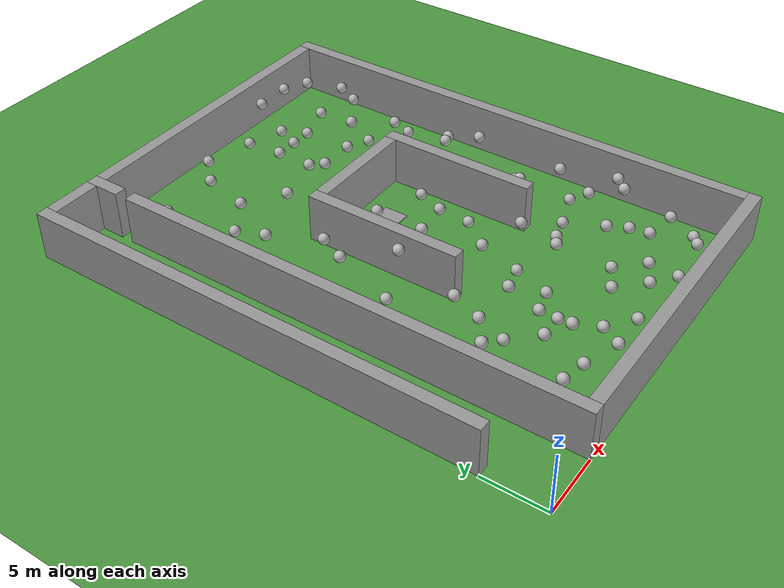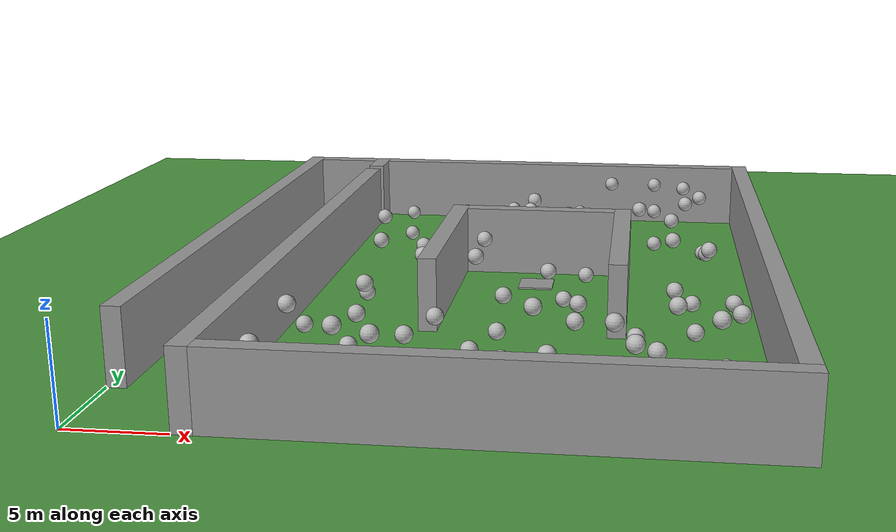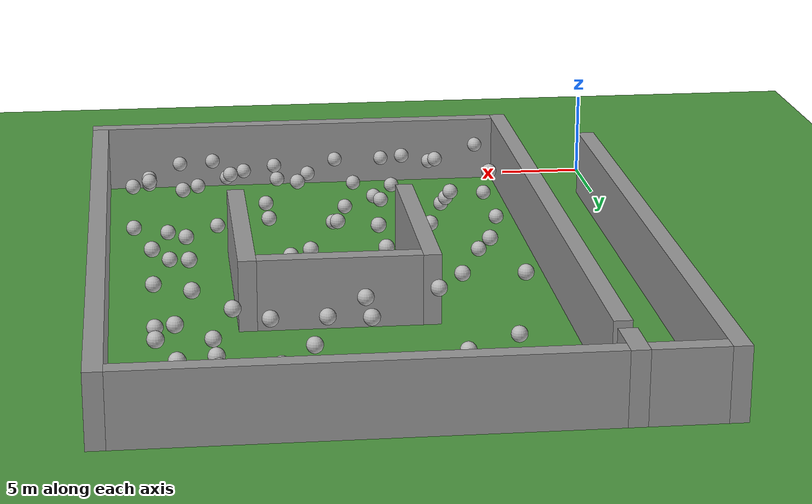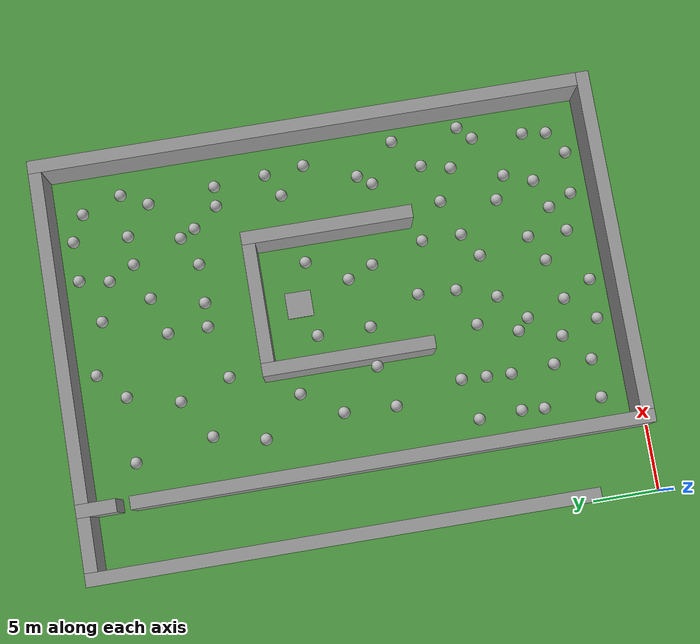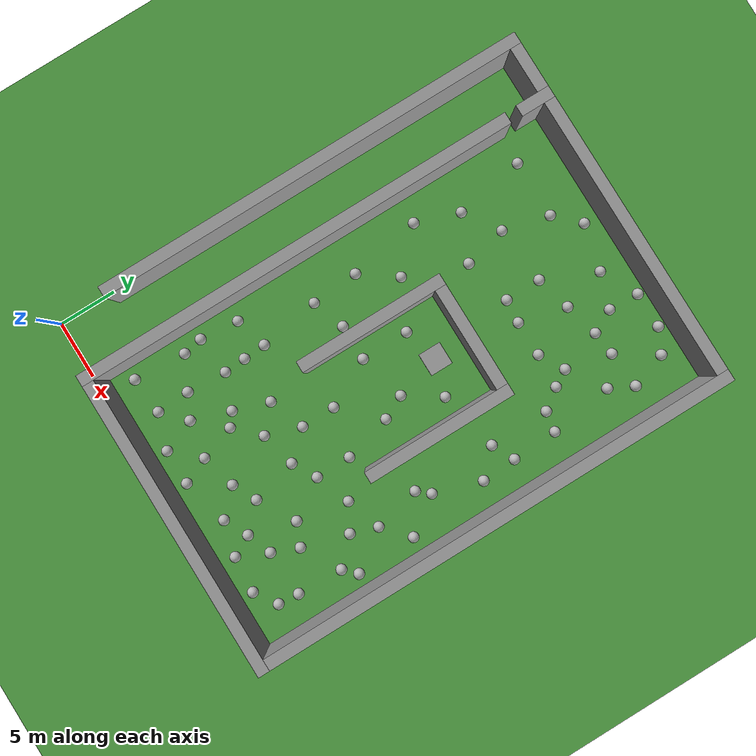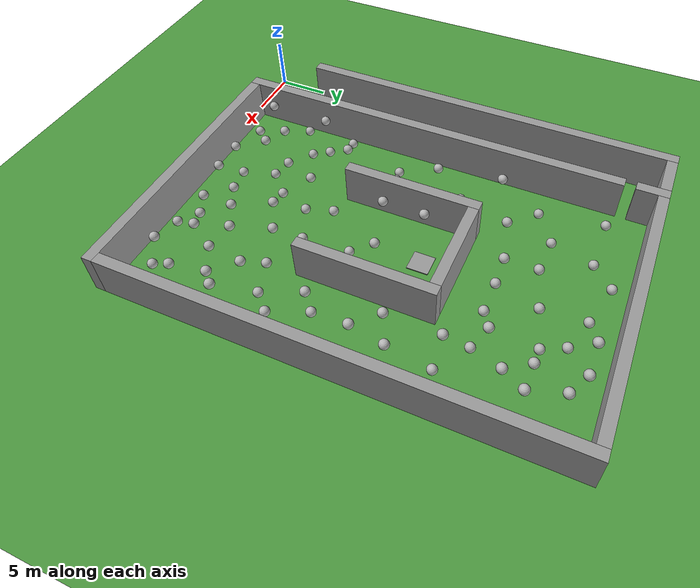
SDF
<sdf version="1.6">
 <world name="default">
  <light name="sun" type="directional">
   <pose>0 0 10 0 -0 0</pose>
   <diffuse>0.8 0.8 0.8 1</diffuse>
   <specular>0.1 0.1 0.1 1</specular>
   <attenuation>
    <range>1000</range>
    <constant>0.9</constant>
    <linear>0.01</linear>
    <quadratic>0.001</quadratic>
   </attenuation>
   <direction>-0.5 0.5 -1</direction>
  </light>
  <model name="ground_plane">
   <static>1</static>
   <link name="link">
    <collision name="collision">
     <geometry><plane><normal>0 0 1</normal><size>100 100</size></plane></geometry>
     <surface><friction><ode><mu>100</mu><mu2>50</mu2></ode></friction></surface>
    </collision>
    <visual name="visual">
     <cast_shadows>0</cast_shadows>
     <geometry><plane><normal>0 0 1</normal><size>100 100</size></plane></geometry>
     <material>
      <script><uri>file://media/materials/scripts/gazebo.material</uri><name>Gazebo/Grass</name></script>
     </material>
    </visual>
   </link>
  </model>
  <gravity>0 0 -9.8</gravity>
  <magnetic_field>6e-06 2.3e-05 -4.2e-05</magnetic_field>
  <atmosphere type="adiabatic"/>
  <physics name="default_physics" default="0" type="ode">
   <max_step_size>0.004</max_step_size>
   <real_time_factor>1</real_time_factor>
   <real_time_update_rate>250</real_time_update_rate>
  </physics>
  <scene>
   <ambient>0.4 0.4 0.4 1</ambient>
   <background>0.7 0.7 0.7 1</background>
   <shadows>1</shadows>
   <sky>
    <clouds>
     <speed>0.6</speed>
     <direction>0</direction>
     <humidity>0.5</humidity>
     <mean_size>0.5</mean_size>
     <ambient>0.8 0.8 0.8 1</ambient>
    </clouds>
   </sky>
  </scene>
  <spherical_coordinates>
   <surface_model>EARTH_WGS84</surface_model>
   <latitude_deg>0</latitude_deg>
   <longitude_deg>0</longitude_deg>
   <elevation>0</elevation>
   <heading_deg>0</heading_deg>
  </spherical_coordinates>
  <model name="wall">
   <pose>5.500000 19.500000 2 0 0 0</pose>
   <static>1</static>
   <link name="wall-link">
    <collision name="collision"><geometry><box><size>1 39 4</size></box></geometry></collision>
    <visual name="visual">
     <geometry><box><size>1 39 4</size></box></geometry>
     <material>
      <script><name>Gazebo/Grey</name><uri>file://media/materials/scripts/gazebo.material</uri></script>
     </material>
    </visual>
    <gravity>0</gravity>
   </link>
  </model>
  <model name="wall">
   <pose>19.000000 0.500000 2 0 0 0</pose>
   <static>1</static>
   <link name="wall-link">
    <collision name="collision"><geometry><box><size>26 1 4</size></box></geometry></collision>
    <visual name="visual">
     <geometry><box><size>26 1 4</size></box></geometry>
     <material>
      <script><name>Gazebo/Grey</name><uri>file://media/materials/scripts/gazebo.material</uri></script>
     </material>
    </visual>
    <gravity>0</gravity>
   </link>
  </model>
  <model name="wall">
   <pose>31.500000 22.000000 2 0 0 0</pose>
   <static>1</static>
   <link name="wall-link">
    <collision name="collision"><geometry><box><size>1 42 4</size></box></geometry></collision>
    <visual name="visual">
     <geometry><box><size>1 42 4</size></box></geometry>
     <material>
      <script><name>Gazebo/Grey</name><uri>file://media/materials/scripts/gazebo.material</uri></script>
     </material>
    </visual>
    <gravity>0</gravity>
   </link>
  </model>
  <model name="wall">
   <pose>0.500000 24.000000 2 0 0 0</pose>
   <static>1</static>
   <link name="wall-link">
    <collision name="collision"><geometry><box><size>1 38 4</size></box></geometry></collision>
    <visual name="visual">
     <geometry><box><size>1 38 4</size></box></geometry>
     <material>
      <script><name>Gazebo/Grey</name><uri>file://media/materials/scripts/gazebo.material</uri></script>
     </material>
    </visual>
    <gravity>0</gravity>
   </link>
  </model>
  <model name="wall">
   <pose>13.500000 21.500000 2 0 0 0</pose>
   <static>1</static>
   <link name="wall-link">
    <collision name="collision"><geometry><box><size>1 13 4</size></box></geometry></collision>
    <visual name="visual">
     <geometry><box><size>1 13 4</size></box></geometry>
     <material>
      <script><name>Gazebo/Grey</name><uri>file://media/materials/scripts/gazebo.material</uri></script>
     </material>
    </visual>
    <gravity>0</gravity>
   </link>
  </model>
  <model name="wall">
   <pose>23.500000 21.500000 2 0 0 0</pose>
   <static>1</static>
   <link name="wall-link">
    <collision name="collision"><geometry><box><size>1 13 4</size></box></geometry></collision>
    <visual name="visual">
     <geometry><box><size>1 13 4</size></box></geometry>
     <material>
      <script><name>Gazebo/Grey</name><uri>file://media/materials/scripts/gazebo.material</uri></script>
     </material>
    </visual>
    <gravity>0</gravity>
   </link>
  </model>
  <model name="wall">
   <pose>18.500000 27.500000 2 0 0 0</pose>
   <static>1</static>
   <link name="wall-link">
    <collision name="collision"><geometry><box><size>9 1 4</size></box></geometry></collision>
    <visual name="visual">
     <geometry><box><size>9 1 4</size></box></geometry>
     <material>
      <script><name>Gazebo/Grey</name><uri>file://media/materials/scripts/gazebo.material</uri></script>
     </material>
    </visual>
    <gravity>0</gravity>
   </link>
  </model>
  <model name="wall">
   <pose>5.500000 41.500000 2 0 0 0</pose>
   <static>1</static>
   <link name="wall-link">
    <collision name="collision"><geometry><box><size>1 3 4</size></box></geometry></collision>
    <visual name="visual">
     <geometry><box><size>1 3 4</size></box></geometry>
     <material>
      <script><name>Gazebo/Grey</name><uri>file://media/materials/scripts/gazebo.material</uri></script>
     </material>
    </visual>
    <gravity>0</gravity>
   </link>
  </model>
  <model name="wall">
   <pose>3.000000 42.500000 2 0 0 0</pose>
   <static>1</static>
   <link name="wall-link">
    <collision name="collision"><geometry><box><size>4 1 4</size></box></geometry></collision>
    <visual name="visual">
     <geometry><box><size>4 1 4</size></box></geometry>
     <material>
      <script><name>Gazebo/Grey</name><uri>file://media/materials/scripts/gazebo.material</uri></script>
     </material>
    </visual>
    <gravity>0</gravity>
   </link>
  </model>
  <model name="wall">
   <pose>18.500000 42.500000 2 0 0 0</pose>
   <static>1</static>
   <link name="wall-link">
    <collision name="collision"><geometry><box><size>25 1 4</size></box></geometry></collision>
    <visual name="visual">
     <geometry><box><size>25 1 4</size></box></geometry>
     <material>
      <script><name>Gazebo/Grey</name><uri>file://media/materials/scripts/gazebo.material</uri></script>
     </material>
    </visual>
    <gravity>0</gravity>
   </link>
  </model>
  <include>
   <uri>model://dynamic_obstacle</uri>
   <name>dynamic_obstacle132</name>
   <pose>13.5 2.5 2 0 0 1.57</pose>
  </include>
  <include>
   <uri>model://dynamic_obstacle</uri>
   <name>dynamic_obstacle162</name>
   <pose>16.5 2.5 2 0 0 1.57</pose>
  </include>
  <include>
   <uri>model://dynamic_obstacle</uri>
   <name>dynamic_obstacle232</name>
   <pose>23.5 2.5 1 0 0 1.57</pose>
  </include>
  <include>
   <uri>model://dynamic_obstacle</uri>
   <name>dynamic_obstacle262</name>
   <pose>26.5 2.5 2 0 0 1.57</pose>
  </include>
  <include>
   <uri>model://dynamic_obstacle</uri>
   <name>dynamic_obstacle73</name>
   <pose>7.5 3.5 3 0 0 1.57</pose>
  </include>
  <include>
   <uri>model://dynamic_obstacle</uri>
   <name>dynamic_obstacle103</name>
   <pose>10.5 3.5 2 0 0 1.57</pose>
  </include>
  <include>
   <uri>model://dynamic_obstacle</uri>
   <name>dynamic_obstacle203</name>
   <pose>20.5 3.5 2 0 0 1.57</pose>
  </include>
  <include>
   <uri>model://dynamic_obstacle</uri>
   <name>dynamic_obstacle283</name>
   <pose>28.5 3.5 1 0 0 1.57</pose>
  </include>
  <include>
   <uri>model://dynamic_obstacle</uri>
   <name>dynamic_obstacle154</name>
   <pose>15.5 4.5 1 0 0 1.57</pose>
  </include>
  <include>
   <uri>model://dynamic_obstacle</uri>
   <name>dynamic_obstacle224</name>
   <pose>22.5 4.5 2 0 0 1.57</pose>
  </include>
  <include>
   <uri>model://dynamic_obstacle</uri>
   <name>dynamic_obstacle125</name>
   <pose>12.5 5.5 3 0 0 1.57</pose>
  </include>
  <include>
   <uri>model://dynamic_obstacle</uri>
   <name>dynamic_obstacle185</name>
   <pose>18.5 5.5 2 0 0 1.57</pose>
  </include>
  <include>
   <uri>model://dynamic_obstacle</uri>
   <name>dynamic_obstacle245</name>
   <pose>24.5 5.5 3 0 0 1.57</pose>
  </include>
  <include>
   <uri>model://dynamic_obstacle</uri>
   <name>dynamic_obstacle285</name>
   <pose>28.5 5.5 2 0 0 1.57</pose>
  </include>
  <include>
   <uri>model://dynamic_obstacle</uri>
   <name>dynamic_obstacle106</name>
   <pose>10.5 6.5 3 0 0 1.57</pose>
  </include>
  <include>
   <uri>model://dynamic_obstacle</uri>
   <name>dynamic_obstacle206</name>
   <pose>20.5 6.5 2 0 0 1.57</pose>
  </include>
  <include>
   <uri>model://dynamic_obstacle</uri>
   <name>dynamic_obstacle77</name>
   <pose>7.5 7.5 1 0 0 1.57</pose>
  </include>
  <include>
   <uri>model://dynamic_obstacle</uri>
   <name>dynamic_obstacle147</name>
   <pose>14.5 7.5 1 0 0 1.57</pose>
  </include>
  <include>
   <uri>model://dynamic_obstacle</uri>
   <name>dynamic_obstacle257</name>
   <pose>25.5 7.5 2 0 0 1.57</pose>
  </include>
  <include>
   <uri>model://dynamic_obstacle</uri>
   <name>dynamic_obstacle138</name>
   <pose>13.5 8.5 2 0 0 1.57</pose>
  </include>
  <include>
   <uri>model://dynamic_obstacle</uri>
   <name>dynamic_obstacle238</name>
   <pose>23.5 8.5 3 0 0 1.57</pose>
  </include>
  <include>
   <uri>model://dynamic_obstacle</uri>
   <name>dynamic_obstacle79</name>
   <pose>7.5 9.5 3 0 0 1.57</pose>
  </include>
  <include>
   <uri>model://dynamic_obstacle</uri>
   <name>dynamic_obstacle109</name>
   <pose>10.5 9.5 1 0 0 1.57</pose>
  </include>
  <include>
   <uri>model://dynamic_obstacle</uri>
   <name>dynamic_obstacle169</name>
   <pose>16.5 9.5 1 0 0 1.57</pose>
  </include>
  <include>
   <uri>model://dynamic_obstacle</uri>
   <name>dynamic_obstacle289</name>
   <pose>28.5 9.5 3 0 0 1.57</pose>
  </include>
  <include>
   <uri>model://dynamic_obstacle</uri>
   <name>dynamic_obstacle1910</name>
   <pose>19.5 10.5 3 0 0 1.57</pose>
  </include>
  <include>
   <uri>model://dynamic_obstacle</uri>
   <name>dynamic_obstacle2910</name>
   <pose>29.5 10.5 3 0 0 1.57</pose>
  </include>
  <include>
   <uri>model://dynamic_obstacle</uri>
   <name>dynamic_obstacle1011</name>
   <pose>10.5 11.5 2 0 0 1.57</pose>
  </include>
  <include>
   <uri>model://dynamic_obstacle</uri>
   <name>dynamic_obstacle1411</name>
   <pose>14.5 11.5 2 0 0 1.57</pose>
  </include>
  <include>
   <uri>model://dynamic_obstacle</uri>
   <name>dynamic_obstacle2111</name>
   <pose>21.5 11.5 2 0 0 1.57</pose>
  </include>
  <include>
   <uri>model://dynamic_obstacle</uri>
   <name>dynamic_obstacle2611</name>
   <pose>26.5 11.5 3 0 0 1.57</pose>
  </include>
  <include>
   <uri>model://dynamic_obstacle</uri>
   <name>dynamic_obstacle712</name>
   <pose>7.5 12.5 1 0 0 1.57</pose>
  </include>
  <include>
   <uri>model://dynamic_obstacle</uri>
   <name>dynamic_obstacle1712</name>
   <pose>17.5 12.5 1 0 0 1.57</pose>
  </include>
  <include>
   <uri>model://dynamic_obstacle</uri>
   <name>dynamic_obstacle2412</name>
   <pose>24.5 12.5 1 0 0 1.57</pose>
  </include>
  <include>
   <uri>model://dynamic_obstacle</uri>
   <name>dynamic_obstacle1013</name>
   <pose>10.5 13.5 3 0 0 1.57</pose>
  </include>
  <include>
   <uri>model://dynamic_obstacle</uri>
   <name>dynamic_obstacle2713</name>
   <pose>27.5 13.5 1 0 0 1.57</pose>
  </include>
  <include>
   <uri>model://dynamic_obstacle</uri>
   <name>dynamic_obstacle2114</name>
   <pose>21.5 14.5 2 0 0 1.57</pose>
  </include>
  <include>
   <uri>model://dynamic_obstacle</uri>
   <name>dynamic_obstacle1715</name>
   <pose>17.5 15.5 2 0 0 1.57</pose>
  </include>
  <include>
   <uri>model://dynamic_obstacle</uri>
   <name>dynamic_obstacle2915</name>
   <pose>29.5 15.5 2 0 0 1.57</pose>
  </include>
  <include>
   <uri>model://dynamic_obstacle</uri>
   <name>dynamic_obstacle2617</name>
   <pose>26.5 17.5 2 0 0 1.57</pose>
  </include>
  <include>
   <uri>model://dynamic_obstacle</uri>
   <name>dynamic_obstacle918</name>
   <pose>9.5 18.5 1 0 0 1.57</pose>
  </include>
  <include>
   <uri>model://dynamic_obstacle</uri>
   <name>dynamic_obstacle2018</name>
   <pose>20.5 18.5 1 0 0 1.57</pose>
  </include>
  <include>
   <uri>model://dynamic_obstacle</uri>
   <name>dynamic_obstacle2718</name>
   <pose>27.5 18.5 1 0 0 1.57</pose>
  </include>
  <include>
   <uri>model://dynamic_obstacle</uri>
   <name>dynamic_obstacle1219</name>
   <pose>12.5 19.5 3 0 0 1.57</pose>
  </include>
  <include>
   <uri>model://dynamic_obstacle</uri>
   <name>dynamic_obstacle1519</name>
   <pose>15.5 19.5 3 0 0 1.57</pose>
  </include>
  <include>
   <uri>model://dynamic_obstacle</uri>
   <name>dynamic_obstacle1920</name>
   <pose>19.5 20.5 2 0 0 1.57</pose>
  </include>
  <include>
   <uri>model://dynamic_obstacle</uri>
   <name>dynamic_obstacle922</name>
   <pose>9.5 22.5 3 0 0 1.57</pose>
  </include>
  <include>
   <uri>model://dynamic_obstacle</uri>
   <name>dynamic_obstacle2822</name>
   <pose>28.5 22.5 3 0 0 1.57</pose>
  </include>
  <include>
   <uri>model://dynamic_obstacle</uri>
   <name>dynamic_obstacle1523</name>
   <pose>15.5 23.5 3 0 0 1.57</pose>
  </include>
  <include>
   <uri>model://dynamic_obstacle</uri>
   <name>dynamic_obstacle2123</name>
   <pose>21.5 23.5 1 0 0 1.57</pose>
  </include>
  <model name="goal">
   <pose>18.5 24.5 0.05 0 -0 0</pose>
   <static>1</static>
   <link name="link">
    <collision name="collision"><geometry><box><size>2.0 2.0 0.1</size></box></geometry></collision>
    <visual name="visual">
     <geometry><box><size>2.0 2.0 0.1</size></box></geometry>
     <material>
      <script><name>Gazebo/Grey</name><uri>file://media/materials/scripts/gazebo.material</uri></script>
     </material>
    </visual>
   </link>
  </model>
  <include>
   <uri>model://dynamic_obstacle</uri>
   <name>dynamic_obstacle2624</name>
   <pose>26.5 24.5 3 0 0 1.57</pose>
  </include>
  <include>
   <uri>model://dynamic_obstacle</uri>
   <name>dynamic_obstacle1125</name>
   <pose>11.5 25.5 2 0 0 1.57</pose>
  </include>
  <include>
   <uri>model://dynamic_obstacle</uri>
   <name>dynamic_obstacle2825</name>
   <pose>28.5 25.5 2 0 0 1.57</pose>
  </include>
  <include>
   <uri>model://dynamic_obstacle</uri>
   <name>dynamic_obstacle828</name>
   <pose>8.5 28.5 3 0 0 1.57</pose>
  </include>
  <include>
   <uri>model://dynamic_obstacle</uri>
   <name>dynamic_obstacle2629</name>
   <pose>26.5 29.5 3 0 0 1.57</pose>
  </include>
  <include>
   <uri>model://dynamic_obstacle</uri>
   <name>dynamic_obstacle2829</name>
   <pose>28.5 29.5 1 0 0 1.57</pose>
  </include>
  <include>
   <uri>model://dynamic_obstacle</uri>
   <name>dynamic_obstacle1330</name>
   <pose>13.5 30.5 3 0 0 1.57</pose>
  </include>
  <include>
   <uri>model://dynamic_obstacle</uri>
   <name>dynamic_obstacle1731</name>
   <pose>17.5 31.5 3 0 0 1.57</pose>
  </include>
  <include>
   <uri>model://dynamic_obstacle</uri>
   <name>dynamic_obstacle1931</name>
   <pose>19.5 31.5 2 0 0 1.57</pose>
  </include>
  <include>
   <uri>model://dynamic_obstacle</uri>
   <name>dynamic_obstacle2231</name>
   <pose>22.5 31.5 2 0 0 1.57</pose>
  </include>
  <include>
   <uri>model://dynamic_obstacle</uri>
   <name>dynamic_obstacle2531</name>
   <pose>25.5 31.5 1 0 0 1.57</pose>
  </include>
  <include>
   <uri>model://dynamic_obstacle</uri>
   <name>dynamic_obstacle932</name>
   <pose>9.5 32.5 1 0 0 1.57</pose>
  </include>
  <include>
   <uri>model://dynamic_obstacle</uri>
   <name>dynamic_obstacle2432</name>
   <pose>24.5 32.5 3 0 0 1.57</pose>
  </include>
  <include>
   <uri>model://dynamic_obstacle</uri>
   <name>dynamic_obstacle1234</name>
   <pose>12.5 34.5 1 0 0 1.57</pose>
  </include>
  <include>
   <uri>model://dynamic_obstacle</uri>
   <name>dynamic_obstacle1734</name>
   <pose>17.5 34.5 3 0 0 1.57</pose>
  </include>
  <include>
   <uri>model://dynamic_obstacle</uri>
   <name>dynamic_obstacle2734</name>
   <pose>27.5 34.5 3 0 0 1.57</pose>
  </include>
  <include>
   <uri>model://dynamic_obstacle</uri>
   <name>dynamic_obstacle2035</name>
   <pose>20.5 35.5 2 0 0 1.57</pose>
  </include>
  <include>
   <uri>model://dynamic_obstacle</uri>
   <name>dynamic_obstacle2336</name>
   <pose>23.5 36.5 1 0 0 1.57</pose>
  </include>
  <include>
   <uri>model://dynamic_obstacle</uri>
   <name>dynamic_obstacle2536</name>
   <pose>25.5 36.5 2 0 0 1.57</pose>
  </include>
  <include>
   <uri>model://dynamic_obstacle</uri>
   <name>dynamic_obstacle2836</name>
   <pose>28.5 36.5 3 0 0 1.57</pose>
  </include>
  <include>
   <uri>model://dynamic_obstacle</uri>
   <name>dynamic_obstacle838</name>
   <pose>8.5 38.5 1 0 0 1.57</pose>
  </include>
  <include>
   <uri>model://dynamic_obstacle</uri>
   <name>dynamic_obstacle1338</name>
   <pose>13.5 38.5 1 0 0 1.57</pose>
  </include>
  <include>
   <uri>model://dynamic_obstacle</uri>
   <name>dynamic_obstacle2238</name>
   <pose>22.5 38.5 1 0 0 1.57</pose>
  </include>
  <include>
   <uri>model://dynamic_obstacle</uri>
   <name>dynamic_obstacle1939</name>
   <pose>19.5 39.5 1 0 0 1.57</pose>
  </include>
  <include>
   <uri>model://dynamic_obstacle</uri>
   <name>dynamic_obstacle2739</name>
   <pose>27.5 39.5 3 0 0 1.57</pose>
  </include>
  <include>
   <uri>model://dynamic_obstacle</uri>
   <name>dynamic_obstacle1540</name>
   <pose>15.5 40.5 1 0 0 1.57</pose>
  </include>
  <include>
   <uri>model://dynamic_obstacle</uri>
   <name>dynamic_obstacle2240</name>
   <pose>22.5 40.5 3 0 0 1.57</pose>
  </include>
  <include>
   <uri>model://dynamic_obstacle</uri>
   <name>dynamic_obstacle2540</name>
   <pose>25.5 40.5 3 0 0 1.57</pose>
  </include>
 </world>
</sdf>

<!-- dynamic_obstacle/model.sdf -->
<sdf version="1.6">
  <model name="dynamic_obstacle">
    <link name="base">
      <gravity>false</gravity>
      <inertial>
        <mass>1000</mass>
        <inertia>
          <ixx>81</ixx>
          <ixy></ixy>
          <ixz></ixz>
          <iyy>81</iyy>
          <iyz></iyz>
          <izz>81</izz>
        </inertia>
      </inertial>
      <collision name="collision">
        <geometry>
          <box>
            <size>0.90 0.90 0.90</size>
          </box>
        </geometry>
      </collision>
      <visual name="visual">
        <geometry>
          <sphere>
            <radius>0.45</radius>
          </sphere>
        </geometry>
      </visual>
    </link>
    <plugin name="dynamic_obstacle" filename="libdynamic_obstacle.so">
      <speed>1</speed>
      <altitude>2</altitude>
    </plugin>
  </model>
</sdf>
